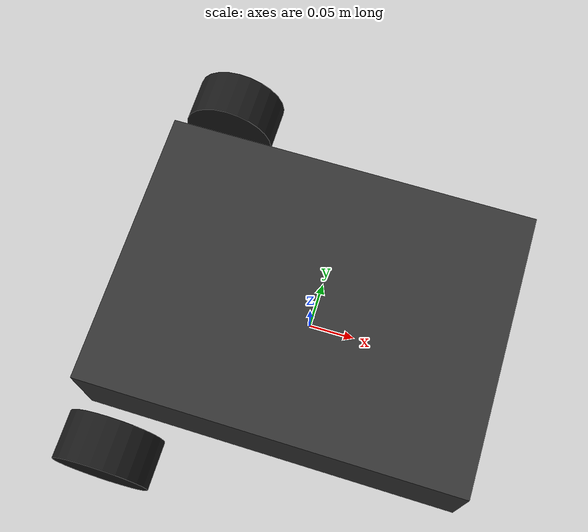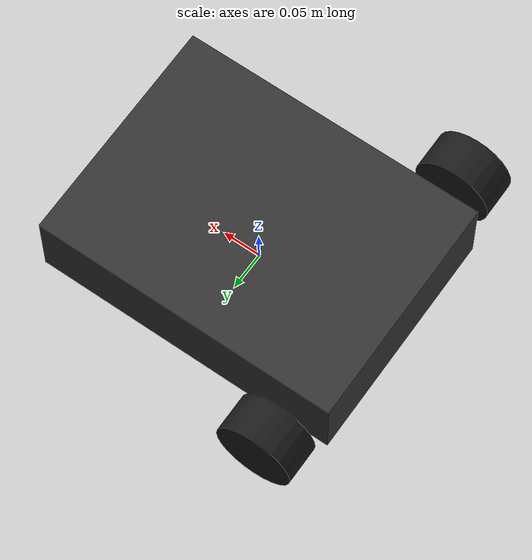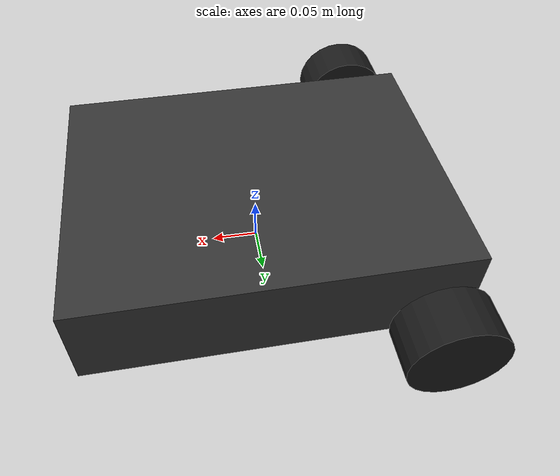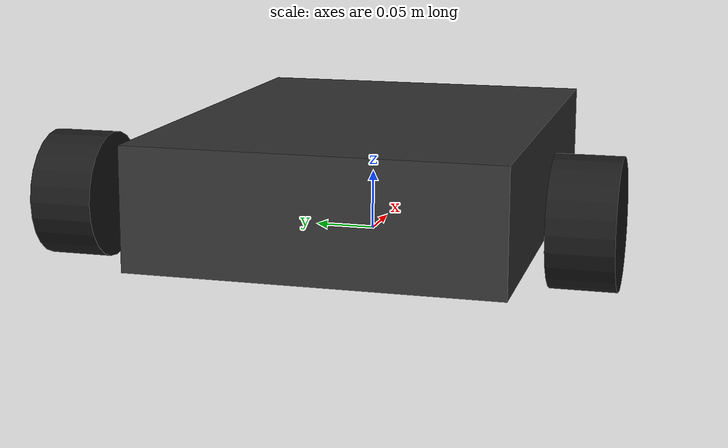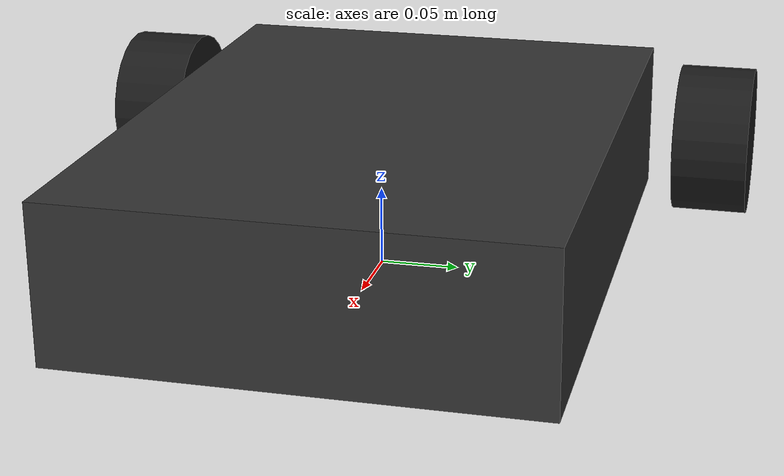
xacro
<?xml version="1.0"?>
<robot xmlns:xacro="http://www.ros.org/wiki/xacro" name="my_robot">
    <!-- 机器人命名空间前缀 -->
    <xacro:property name="prefix" value="robot"/>

    <xacro:include filename="$(find my_robot)/urdf/materials.xacro"/>
    <xacro:include filename="$(find my_robot)/urdf/common_inertial.xacro"/>
    <xacro:include filename="$(find my_robot)/urdf/chassis.xacro"/>
    <xacro:include filename="$(find my_robot)/urdf/wheels.xacro"/>
    <xacro:include filename="$(find my_robot)/urdf/sensors.xacro"/>

    <!-- 实例化部件 -->
    <xacro:chassis prefix="${prefix}"/>
    <xacro:wheel prefix="${prefix}" side="left"/>
    <xacro:wheel prefix="${prefix}" side="right"/>

    <!-- Gazebo 差速驱动插件 -->
    <gazebo>
        <plugin name="diff_drive_controller" filename="libgazebo_ros_diff_drive.so">
            <ros>
                <namespace>/</namespace>
                <remapping>cmd_vel:=/cmd_vel</remapping>
                <remapping>odom:=odom</remapping>
            </ros>
            <update_rate>30.0</update_rate>
            <left_joint>${prefix}_left_wheel_joint</left_joint>
            <right_joint>${prefix}_right_wheel_joint</right_joint>
            <wheel_separation>0.4</wheel_separation>
            <wheel_diameter>0.1</wheel_diameter>
            <max_wheel_torque>20</max_wheel_torque>
            <max_wheel_acceleration>1.0</max_wheel_acceleration>
            <!-- 输出 -->
            <publish_odom>true</publish_odom>
            <publish_odom_tf>true</publish_odom_tf>
            <publish_wheel_tf>true</publish_wheel_tf>

            <odometry_frame>odom</odometry_frame>
            <robot_base_frame>${prefix}_base_link</robot_base_frame>
        </plugin>
    </gazebo>
</robot>

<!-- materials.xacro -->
<robot>
  <material name="dark_grey">
    <color rgba="0.2 0.2 0.2 1.0"/>
  </material>
  <material name="black">
    <color rgba="0.1 0.1 0.1 1.0"/>
  </material>
  <material name="red">
    <color rgba="1.0 0.0 0.0 1.0"/>
  </material>
  <material name="blue">
    <color rgba="0.0 0.0 1.0 1.0"/>
  </material>
  <material name="green">
    <color rgba="0.0 1.0 0.0 1.0"/>
  </material>
</robot>

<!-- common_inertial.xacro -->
<robot xmlns:xacro="http://www.ros.org/wiki/xacro">
    <!-- 长方体 -->
    <xacro:macro name="box_inertial" params="m w h d">
        <inertial>
            <mass value="${m}"/>
            <inertia ixx="${ (m/12) * (h*h + d*d) }" ixy="0.0" ixz="0.0" iyy="${ (m/12) * (w*w + d*d) }" iyz="0.0" izz="${ (m/12) * (w*w + h*h) }"/>
        </inertial>
    </xacro:macro>

    <!-- 圆柱体 -->
    <xacro:macro name="cylinder_inertial" params="m r h">
        <inertial>
            <mass value="${m}"/>
            <inertia ixx="${ (m/12) * (3*r*r + h*h) }" ixy="0.0" ixz="0.0" iyy="${ (m/12) * (3*r*r + h*h) }" iyz="0.0" izz="${ (m/2) * (r*r) }"/>
        </inertial>
    </xacro:macro>

    <!-- 球体 -->
     <xacro:macro name="sphere_inertial" params="m r">
        <inertial>
            <mass value="${m}"/>
            <inertia ixx="${ (2/5) * m * (r*r) }" ixy="0.0" ixz="0.0" iyy="${ (2/5) * m * (r*r) }" iyz="0.0" izz="${ (2/5) * m * (r*r) }"/>
        </inertial>
     </xacro:macro>
</robot>

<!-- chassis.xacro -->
<robot xmlns:xacro="http://www.ros.org/wiki/xacro">
    <xacro:include filename="$(find my_robot)/urdf/common_inertial.xacro"/>
    <xacro:macro name="chassis" params="prefix">
        <link name="${prefix}_base_link">
            <!-- 视觉 -->
            <visual>
                <origin xyz="0 0 0.05" rpy="0 0 0"/>
                <geometry>
                    <box size="0.4 0.3 0.1"/>
                </geometry>
                <material name="dark_grey"/>
            </visual>
            <!-- 碰撞属性 -->
            <collision>
                <origin xyz="0 0 0.05" rpy="0 0 0"/>
                <geometry>
                    <box size="0.4 0.3 0.1"/>
                </geometry>
            </collision>
            <!-- 惯性 -->
            <xacro:box_inertial m="2.0" w="0.3" h="0.1" d="0.4"/>
        </link>
    </xacro:macro>
</robot>

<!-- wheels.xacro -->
<robot xmlns:xacro="http://www.ros.org/wiki/xacro">
    <xacro:include filename="$(find my_robot)/urdf/common_inertial.xacro"/>
    <xacro:macro name="wheel" params="prefix side">
        <!-- 根据 side 设置 y 偏移量 -->
        <xacro:if value="${side == 'left'}">
            <xacro:property name="y_offset" value="-0.2"/>
        </xacro:if>
        <xacro:unless value="${side == 'left'}">
            <xacro:property name="y_offset" value="0.2"/>
        </xacro:unless>

        <link name="${prefix}_${side}_wheel">
            <!-- 视觉 -->
            <visual>
                <origin xyz="0.0 0.0 0.0" rpy="1.5708 0.0 0.0"/>
                <geometry>
                    <cylinder radius="0.05" length="0.05"/>
                </geometry>
                <material name="black" />
            </visual>
            <!-- 碰撞 -->
            <collision>
                <origin xyz="0.0 0.0 0.0" rpy="1.5708 0.0 0.0"/>
                <geometry>
                    <cylinder radius="0.05" length="0.05"/>
                </geometry>
            </collision>
            <!-- 质量与惯性 -->
            <xacro:cylinder_inertial m="0.2" r="0.05" h="0.05"/>
        </link>

        <!-- 关节 -->
        <joint name="${prefix}_${side}_wheel_joint" type="continuous">
            <parent link="${prefix}_base_link"/>
            <child link="${prefix}_${side}_wheel"/>
            <!-- 轮子中心位置：x = -0.15（靠近后部），y 根据左右调整（0.3 / 2 + 0.05，使车轮在外部），z = 0.05（使轮子接地） -->
            <origin xyz="-0.15 ${y_offset} 0.051" rpy="0 0 0"/>
            <axis xyz="0 1 0"/> <!-- 绕 y 轴旋转 -->
        </joint>

        <!-- 增加摩擦系数 -->
        <gazebo reference="${prefix}_${side}_wheel">
            <mu1>1.0</mu1>
            <mu2>1.0</mu2>
        </gazebo>
    </xacro:macro>
</robot>
